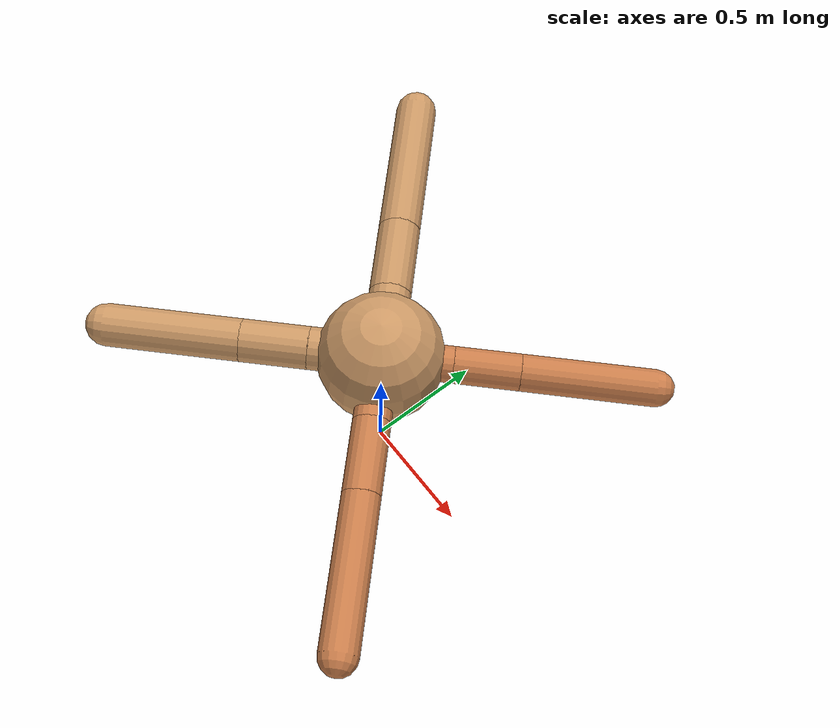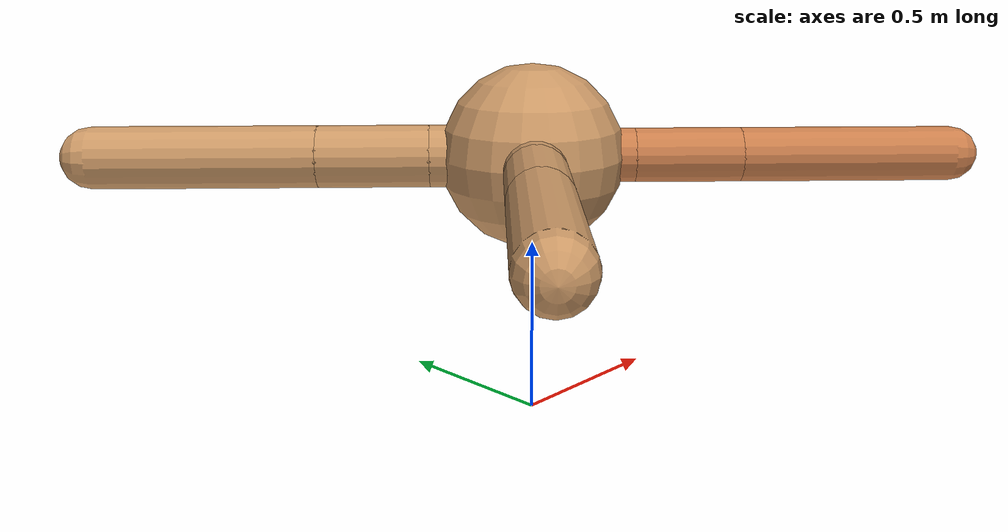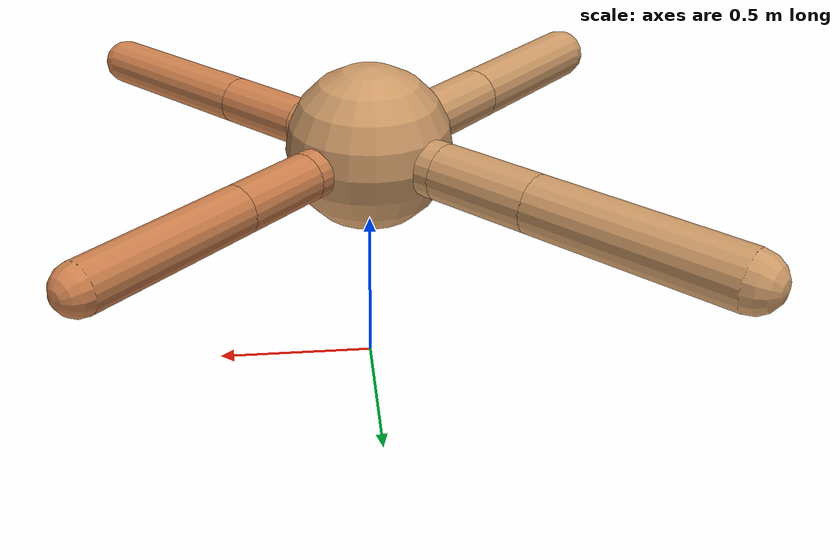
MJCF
<?xml version="1.0" ?>
<mujoco model="ant">

	<compiler angle="degree" coordinate="local" inertiafromgeom="true"/>

	<option integrator="RK4" timestep="0.01"/>

	<custom>

		<numeric data="0.0 0.0 0.55 1.0 0.0 0.0 0.0 0.0 1.0 0.0 -1.0 0.0 -1.0 0.0 1.0" name="init_qpos"/>

	</custom>

	<default>

		<joint armature="1" damping="1" limited="true"/>

		<geom conaffinity="0" condim="3" density="5.0" friction="1.5 0.1 0.1" margin="0.01" rgba="0.8 0.6 0.4 1"/>

	</default>

	<worldbody>

		<body name="torso" pos="0 0 0.75">

			<geom name="torso_geom" pos="0 0 0" size="0.25484232536350154" type="sphere"/>

			<!--joint armature="0" damping="0" limited="false" margin="0.01" name="root" pos="0 0 0" type="free"/-->

			<body name="front_left_leg" pos="0 0 0">

				<geom fromto="0 0 0 0.2 0.2 0" name="aux_1_geom" size="0.07264063193740387" type="capsule" rgba=".8 .5 .3 1"/>

				<body name="aux_1" pos="0.2 0.2 0">

					<joint axis="0 0 1" name="hip_1" pos="0.0 0.0 0.0" range="-40 40" type="hinge"/>

					<geom fromto="0 0 0 0.18331247254313032 0.18331247254313032 0" name="left_leg_geom" size="0.07264063193740387" type="capsule" rgba=".8 .5 .3 1"/>

					<body pos="0.18331247254313032 0.18331247254313032 0" name="front_left_foot">

						<joint axis="-1 1 0" name="ankle_1" pos="0.0 0.0 0.0" range="30 100" type="hinge"/>

						<geom fromto="0 0 0 0.36662494508626065 0.36662494508626065 0" name="left_ankle_geom" size="0.07264063193740387" type="capsule" rgba=".8 .5 .3 1"/>

					</body>

				</body>

			</body>

			<body name="front_right_leg" pos="0 0 0">

				<geom fromto="0 0 0 -0.2 0.2 0" name="aux_2_geom" size="0.08588974847855753" type="capsule"/>

				<body name="aux_2" pos="-0.2 0.2 0">

					<joint axis="0 0 1" name="hip_2" pos="0.0 0.0 0.0" range="-40 40" type="hinge"/>

					<geom fromto="0 0 0 -0.21734484612966978 0.21734484612966978 0" name="right_leg_geom" size="0.08588974847855753" type="capsule"/>

					<body pos="-0.21734484612966978 0.21734484612966978 0" name="front_right_foot">

						<joint axis="1 1 0" name="ankle_2" pos="0.0 0.0 0.0" range="-100 -30" type="hinge"/>

						<geom fromto="0 0 0 -0.43468969225933957 0.43468969225933957 0" name="right_ankle_geom" size="0.08588974847855753" type="capsule"/>

					</body>

				</body>

			</body>

			<body name="left_back_leg" pos="0 0 0">

				<geom fromto="0 0 0 -0.2 -0.2 0" name="aux_3_geom" size="0.08510896125440612" type="capsule"/>

				<body name="aux_3" pos="-0.2 -0.2 0">

					<joint axis="0 0 1" name="hip_3" pos="0.0 0.0 0.0" range="-40 40" type="hinge"/>

					<geom fromto="0 0 0 -0.19025373329755385 -0.19025373329755385 0" name="back_leg_geom" size="0.08510896125440612" type="capsule"/>

					<body pos="-0.19025373329755385 -0.19025373329755385 0" name="left_back_foot">

						<joint axis="-1 1 0" name="ankle_3" pos="0.0 0.0 0.0" range="-100 -30" type="hinge"/>

						<geom fromto="0 0 0 -0.3805074665951077 -0.3805074665951077 0" name="third_ankle_geom" size="0.08510896125440612" type="capsule"/>

					</body>

				</body>

			</body>

			<body name="right_back_leg" pos="0 0 0">

				<geom fromto="0 0 0 0.2 -0.2 0" name="aux_4_geom" size="0.07507678239044276" type="capsule" rgba=".8 .5 .3 1"/>

				<body name="aux_4" pos="0.2 -0.2 0">

					<joint axis="0 0 1" name="hip_4" pos="0.0 0.0 0.0" range="-40 40" type="hinge"/>

					<geom fromto="0 0 0 0.20781749776691505 -0.20781749776691505 0" name="rightback_leg_geom" size="0.07507678239044276" type="capsule" rgba=".8 .5 .3 1"/>

					<body pos="0.20781749776691505 -0.20781749776691505 0" name="right_back_foot">

						<joint axis="1 1 0" name="ankle_4" pos="0.0 0.0 0.0" range="30 100" type="hinge"/>

						<geom fromto="0 0 0 0.4156349955338301 -0.4156349955338301 0" name="fourth_ankle_geom" size="0.07507678239044276" type="capsule" rgba=".8 .5 .3 1"/>

					</body>

				</body>

			</body>

		</body>

	</worldbody>

	<actuator>

		<motor ctrllimited="true" ctrlrange="-1.0 1.0" joint="hip_4" gear="150"/>

		<motor ctrllimited="true" ctrlrange="-1.0 1.0" joint="ankle_4" gear="150"/>

		<motor ctrllimited="true" ctrlrange="-1.0 1.0" joint="hip_1" gear="150"/>

		<motor ctrllimited="true" ctrlrange="-1.0 1.0" joint="ankle_1" gear="150"/>

		<motor ctrllimited="true" ctrlrange="-1.0 1.0" joint="hip_2" gear="150"/>

		<motor ctrllimited="true" ctrlrange="-1.0 1.0" joint="ankle_2" gear="150"/>

		<motor ctrllimited="true" ctrlrange="-1.0 1.0" joint="hip_3" gear="150"/>

		<motor ctrllimited="true" ctrlrange="-1.0 1.0" joint="ankle_3" gear="150"/>

	</actuator>

</mujoco>
